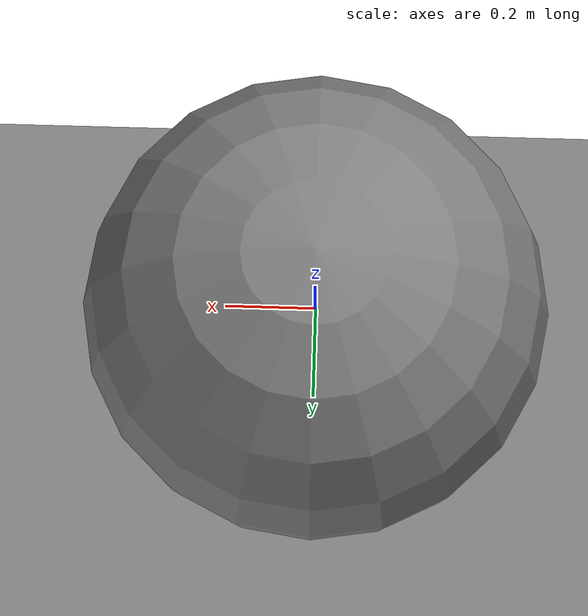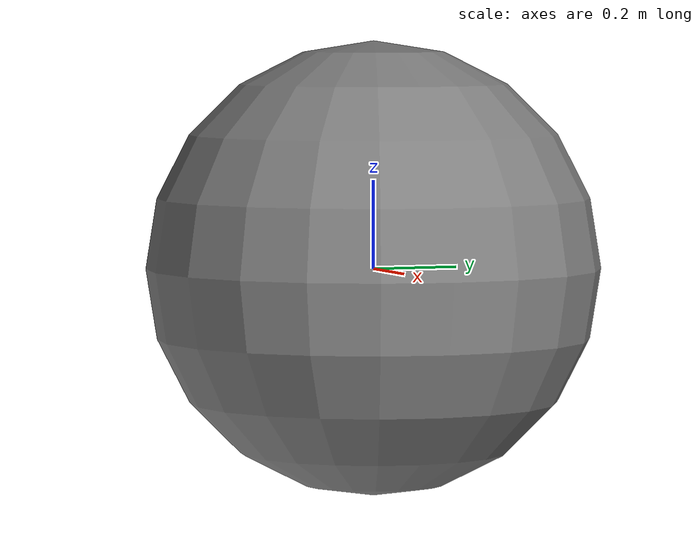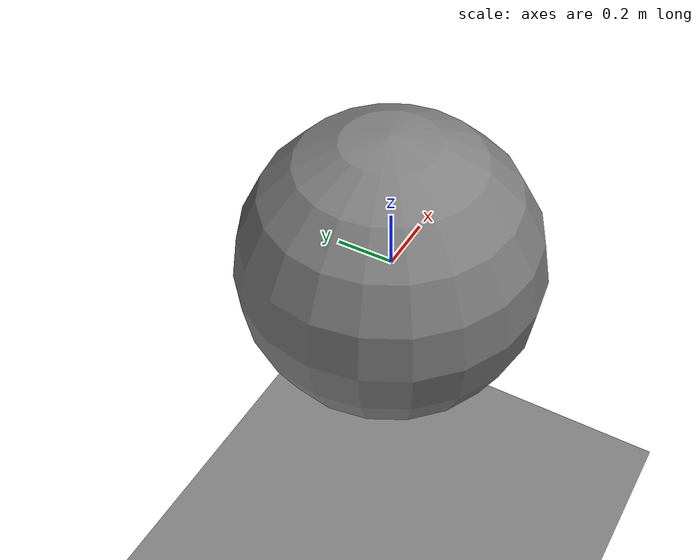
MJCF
<mujoco model="unnamed_model">
  <default>
    <default class="/"/>
  </default>
  <worldbody>
    <geom name="//unnamed_geom_0" class="/" type="plane" size="100 100 0.10000000000000001" pos="0 0 -1.5165950402070791"/>
    <body name="body0" pos="0 0 0">
      <joint name="//unnamed_joint_0" class="/" type="free"/>
      <geom name="//unnamed_geom_1" class="/" type="sphere" size="0.51659504020707903 0.51659504020707903 0.51659504020707903"/>
    </body>
  </worldbody>
</mujoco>
